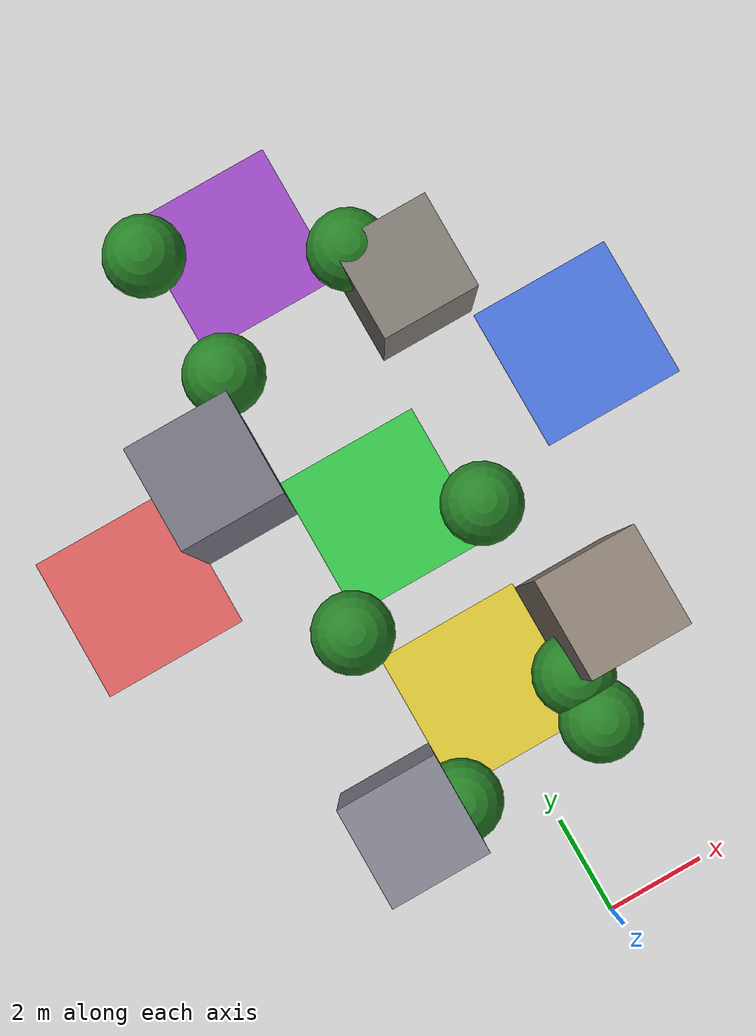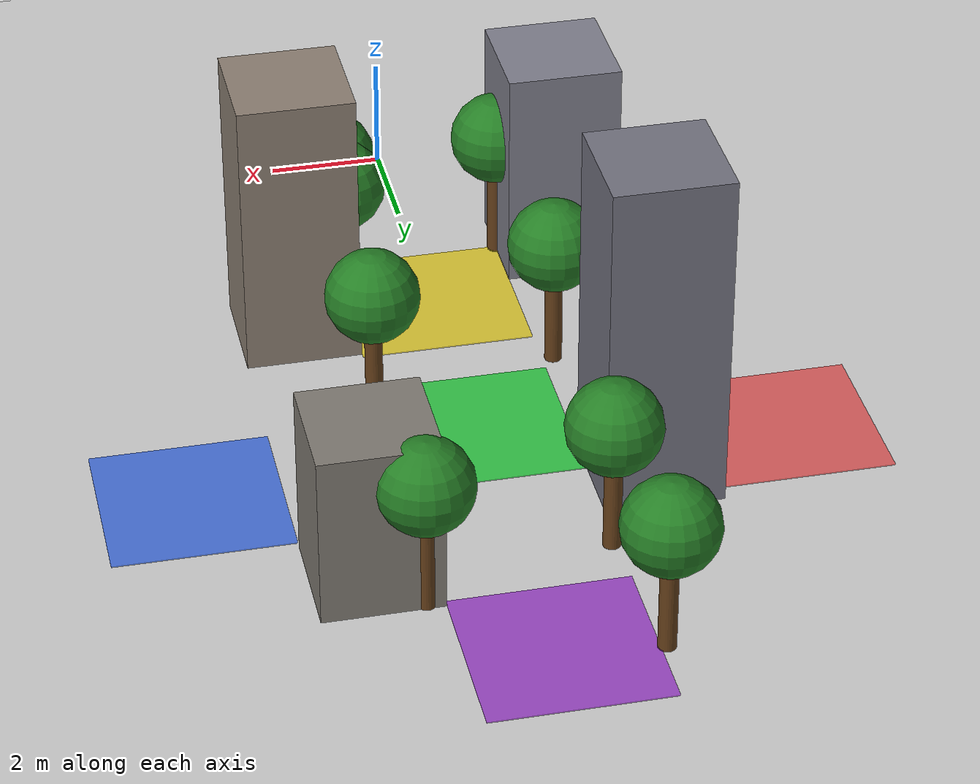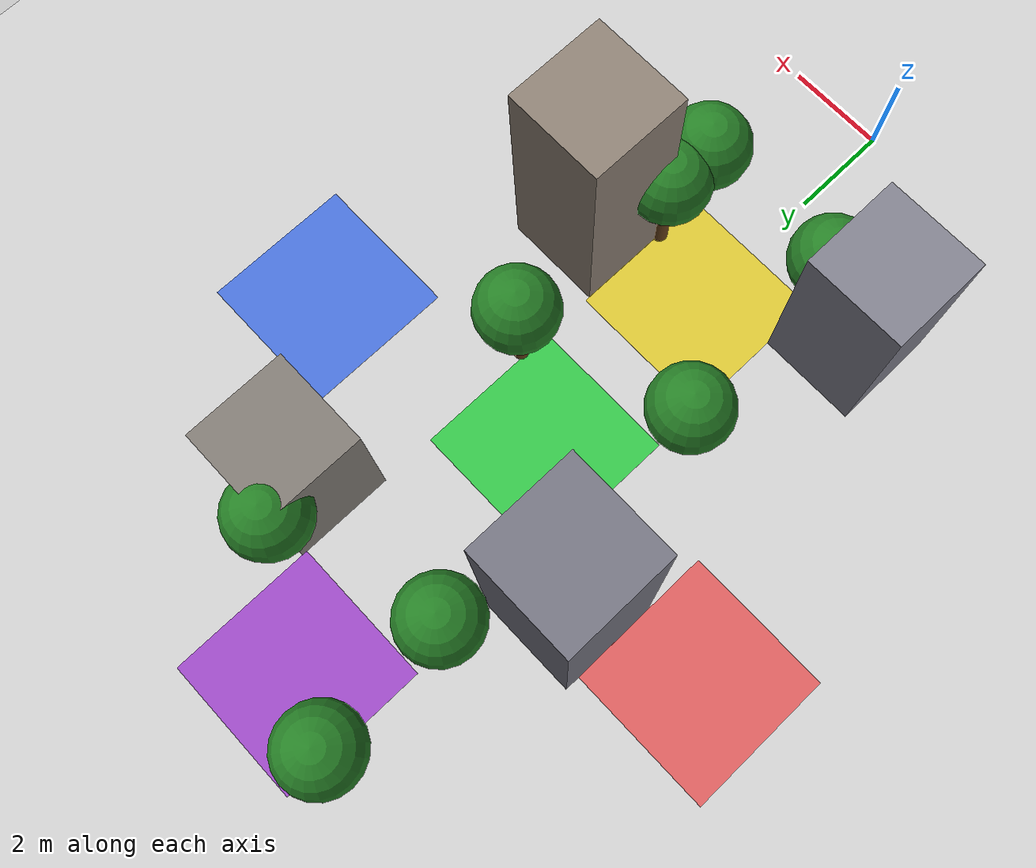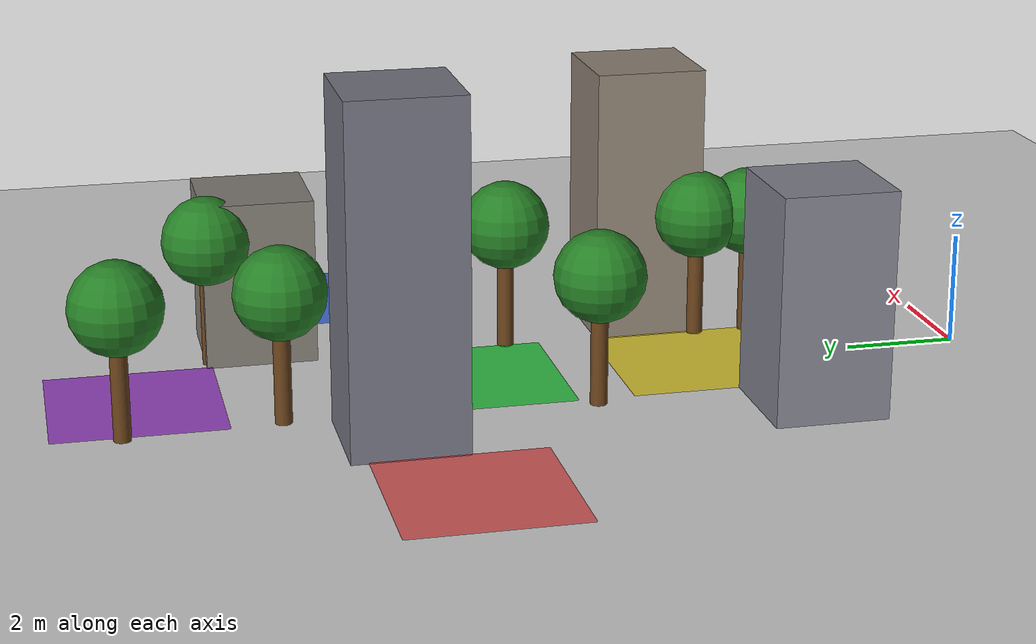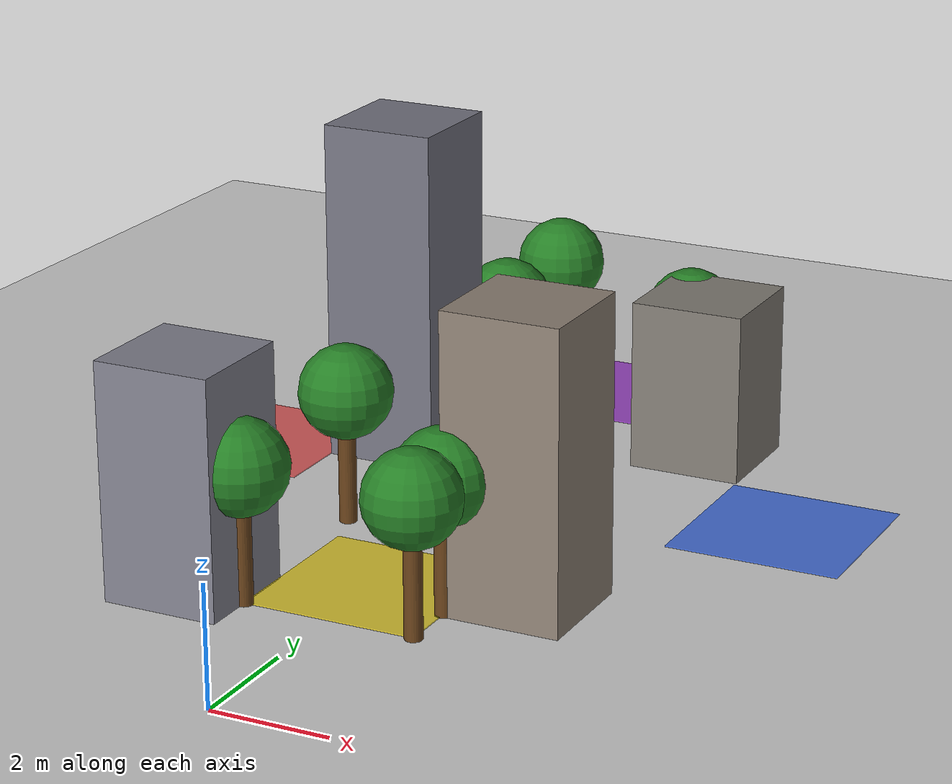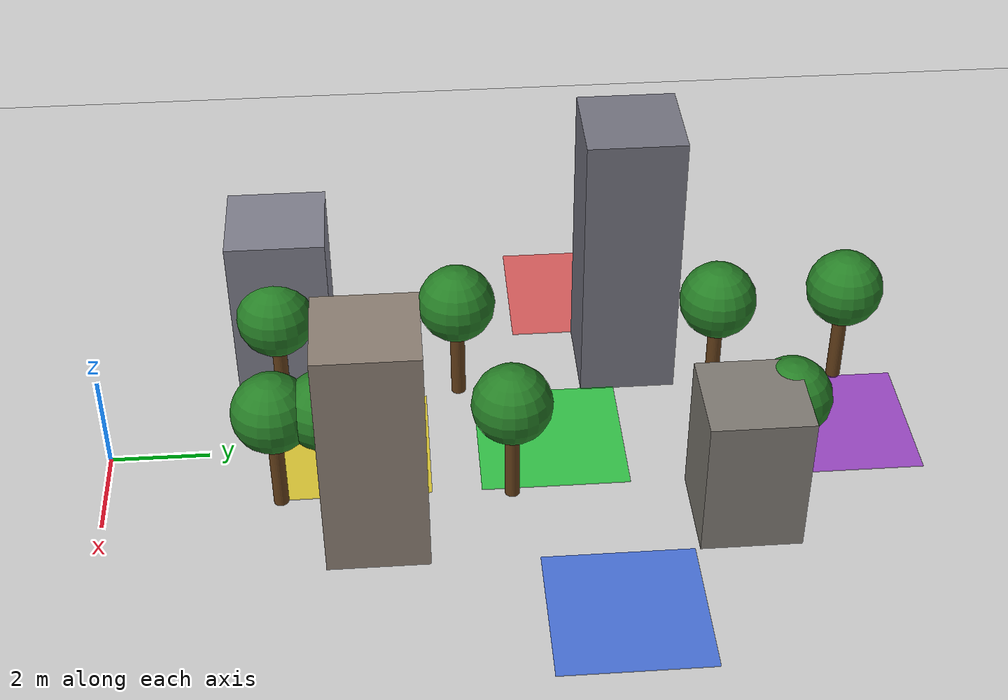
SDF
<?xml version="1.0" encoding="UTF-8"?>
<sdf version="1.9">
  <world name="default">
    <physics type="ode">
      <max_step_size>0.004</max_step_size>
      <real_time_factor>1.0</real_time_factor>
      <real_time_update_rate>250</real_time_update_rate>
    </physics>
    <gravity>0 0 -9.8</gravity>
    <magnetic_field>6e-06 2.3e-05 -4.2e-05</magnetic_field>
    <atmosphere type="adiabatic"/>
    <scene>
      <grid>false</grid>
      <ambient>0.4 0.4 0.4 1</ambient>
      <background>0.7 0.7 0.7 1</background>
      <shadows>true</shadows>
    </scene>
    <model name="ground_plane">
      <static>true</static>
      <link name="link">
        <collision name="collision">
          <geometry>
            <plane>
              <normal>0 0 1</normal>
              <size>1 1</size>
            </plane>
          </geometry>
          <surface>
            <friction>
              <ode/>
            </friction>
            <bounce/>
            <contact/>
          </surface>
        </collision>
        <visual name="visual">
          <geometry>
            <plane>
              <normal>0 0 1</normal>
              <size>500 500</size>
            </plane>
          </geometry>
          <material>
            <ambient>0.8 0.8 0.8 1</ambient>
            <diffuse>0.8 0.8 0.8 1</diffuse>
            <specular>0.8 0.8 0.8 1</specular>
          </material>
        </visual>
        <pose>0 0 0 0 -0 0</pose>
        <inertial>
          <pose>0 0 0 0 -0 0</pose>
          <mass>1</mass>
          <inertia>
            <ixx>1</ixx>
            <ixy>0</ixy>
            <ixz>0</ixz>
            <iyy>1</iyy>
            <iyz>0</iyz>
            <izz>1</izz>
          </inertia>
        </inertial>
        <enable_wind>false</enable_wind>
      </link>
      <pose>0 0 0 0 -0 0</pose>
      <self_collide>false</self_collide>
    </model>
    <light name="sunUTC" type="directional">
      <pose>0 0 500 0 -0 0</pose>
      <cast_shadows>true</cast_shadows>
      <intensity>1</intensity>
      <direction>0.001 0.625 -0.78</direction>
      <diffuse>0.904 0.904 0.904 1</diffuse>
      <specular>0.271 0.271 0.271 1</specular>
      <attenuation>
        <range>2000</range>
        <linear>0</linear>
        <constant>1</constant>
        <quadratic>0</quadratic>
      </attenuation>
      <spot>
        <inner_angle>0</inner_angle>
        <outer_angle>0</outer_angle>
        <falloff>0</falloff>
      </spot>
    </light>
    <spherical_coordinates>
      <surface_model>EARTH_WGS84</surface_model>
      <world_frame_orientation>ENU</world_frame_orientation>
      <latitude_deg>47.397971057728974</latitude_deg>
      <longitude_deg> 8.546163739800146</longitude_deg>
      <elevation>0</elevation>
    </spherical_coordinates>
  <!-- Korytarz przeszkód: 4 słupy tworzące "bramkę" do przelotu -->
     <!-- Budynki po lewej stronie korytarza (X ujemne) -->
    <model name="building_1">
      <static>true</static>
      <pose>-2.5 3.6 2 0 0 0</pose>
      <link name="link">
        <collision name="collision"><geometry><box><size>2 2 4</size></box></geometry></collision>
        <visual name="visual">
          <geometry><box><size>2 2 4</size></box></geometry>
          <material><ambient>0.5 0.5 0.55 1</ambient><diffuse>0.5 0.5 0.55 1</diffuse></material>
        </visual>
      </link>
    </model>

    <model name="building_2">
      <static>true</static>
      <pose>-2.5 10.8 3 0 0 0</pose>
      <link name="link">
        <collision name="collision"><geometry><box><size>2 2 6</size></box></geometry></collision>
        <visual name="visual">
          <geometry><box><size>2 2 6</size></box></geometry>
          <material><ambient>0.45 0.45 0.5 1</ambient><diffuse>0.45 0.45 0.5 1</diffuse></material>
        </visual>
      </link>
    </model>

    <!-- Budynki po prawej stronie korytarza (X dodatnie) -->
    <model name="building_3">
      <static>true</static>
      <pose>2.5 5.4 2.5 0 0 0</pose>
      <link name="link">
        <collision name="collision"><geometry><box><size>2 2 5</size></box></geometry></collision>
        <visual name="visual">
          <geometry><box><size>2 2 5</size></box></geometry>
          <material><ambient>0.55 0.5 0.45 1</ambient><diffuse>0.55 0.5 0.45 1</diffuse></material>
        </visual>
      </link>
    </model>

    <model name="building_4">
      <static>true</static>
      <pose>2.5 12.6 1.5 0 0 0</pose>
      <link name="link">
        <collision name="collision"><geometry><box><size>2 2 3</size></box></geometry></collision>
        <visual name="visual">
          <geometry><box><size>2 2 3</size></box></geometry>
          <material><ambient>0.5 0.48 0.45 1</ambient><diffuse>0.5 0.48 0.45 1</diffuse></material>
        </visual>
      </link>
    </model>

    <model name="tree_0">
      <static>true</static>
      <pose>-1.5 3.5 1.0 0 0 0</pose>
      <link name="link">
        <collision name="trunk_collision">
          <geometry><cylinder><radius>0.15</radius><length>2</length></cylinder></geometry>
        </collision>
        <visual name="trunk_visual">
          <geometry><cylinder><radius>0.15</radius><length>2</length></cylinder></geometry>
          <material><ambient>0.4 0.25 0.1 1</ambient><diffuse>0.4 0.25 0.1 1</diffuse></material>
        </visual>
        <visual name="crown_visual">
          <pose>0 0 1.3 0 0 0</pose>
          <geometry><sphere><radius>0.8</radius></sphere></geometry>
          <material><ambient>0.15 0.5 0.15 1</ambient><diffuse>0.15 0.5 0.15 1</diffuse></material>
        </visual>
      </link>
    </model>

    <model name="tree_1">
      <static>true</static>
      <pose>1.5 3.5 1.0 0 0 0</pose>
      <link name="link">
        <collision name="trunk_collision">
          <geometry><cylinder><radius>0.15</radius><length>2</length></cylinder></geometry>
        </collision>
        <visual name="trunk_visual">
          <geometry><cylinder><radius>0.15</radius><length>2</length></cylinder></geometry>
          <material><ambient>0.4 0.25 0.1 1</ambient><diffuse>0.4 0.25 0.1 1</diffuse></material>
        </visual>
        <visual name="crown_visual">
          <pose>0 0 1.3 0 0 0</pose>
          <geometry><sphere><radius>0.8</radius></sphere></geometry>
          <material><ambient>0.15 0.5 0.15 1</ambient><diffuse>0.15 0.5 0.15 1</diffuse></material>
        </visual>
      </link>
    </model>

    <model name="tree_2">
      <static>true</static>
      <pose>-1.7 7.2 1.0 0 0 0</pose>
      <link name="link">
        <collision name="trunk_collision">
          <geometry><cylinder><radius>0.15</radius><length>2</length></cylinder></geometry>
        </collision>
        <visual name="trunk_visual">
          <geometry><cylinder><radius>0.15</radius><length>2</length></cylinder></geometry>
          <material><ambient>0.4 0.25 0.1 1</ambient><diffuse>0.4 0.25 0.1 1</diffuse></material>
        </visual>
        <visual name="crown_visual">
          <pose>0 0 1.3 0 0 0</pose>
          <geometry><sphere><radius>0.8</radius></sphere></geometry>
          <material><ambient>0.15 0.5 0.15 1</ambient><diffuse>0.15 0.5 0.15 1</diffuse></material>
        </visual>
      </link>
    </model>

    <model name="tree_3">
      <static>true</static>
      <pose>1.6 8.1 1.0 0 0 0</pose>
      <link name="link">
        <collision name="trunk_collision">
          <geometry><cylinder><radius>0.15</radius><length>2</length></cylinder></geometry>
        </collision>
        <visual name="trunk_visual">
          <geometry><cylinder><radius>0.15</radius><length>2</length></cylinder></geometry>
          <material><ambient>0.4 0.25 0.1 1</ambient><diffuse>0.4 0.25 0.1 1</diffuse></material>
        </visual>
        <visual name="crown_visual">
          <pose>0 0 1.3 0 0 0</pose>
          <geometry><sphere><radius>0.8</radius></sphere></geometry>
          <material><ambient>0.15 0.5 0.15 1</ambient><diffuse>0.15 0.5 0.15 1</diffuse></material>
        </visual>
      </link>
    </model>

    <model name="tree_4">
      <static>true</static>
      <pose>-1.4 12.6 1.0 0 0 0</pose>
      <link name="link">
        <collision name="trunk_collision">
          <geometry><cylinder><radius>0.15</radius><length>2</length></cylinder></geometry>
        </collision>
        <visual name="trunk_visual">
          <geometry><cylinder><radius>0.15</radius><length>2</length></cylinder></geometry>
          <material><ambient>0.4 0.25 0.1 1</ambient><diffuse>0.4 0.25 0.1 1</diffuse></material>
        </visual>
        <visual name="crown_visual">
          <pose>0 0 1.3 0 0 0</pose>
          <geometry><sphere><radius>0.8</radius></sphere></geometry>
          <material><ambient>0.15 0.5 0.15 1</ambient><diffuse>0.15 0.5 0.15 1</diffuse></material>
        </visual>
      </link>
    </model>

    <model name="tree_5">
      <static>true</static>
      <pose>1.8 13.5 1.0 0 0 0</pose>
      <link name="link">
        <collision name="trunk_collision">
          <geometry><cylinder><radius>0.15</radius><length>2</length></cylinder></geometry>
        </collision>
        <visual name="trunk_visual">
          <geometry><cylinder><radius>0.15</radius><length>2</length></cylinder></geometry>
          <material><ambient>0.4 0.25 0.1 1</ambient><diffuse>0.4 0.25 0.1 1</diffuse></material>
        </visual>
        <visual name="crown_visual">
          <pose>0 0 1.3 0 0 0</pose>
          <geometry><sphere><radius>0.8</radius></sphere></geometry>
          <material><ambient>0.15 0.5 0.15 1</ambient><diffuse>0.15 0.5 0.15 1</diffuse></material>
        </visual>
      </link>
    </model>

    <model name="tree_6">
      <static>true</static>
      <pose>-1.6 15.3 1.0 0 0 0</pose>
      <link name="link">
        <collision name="trunk_collision">
          <geometry><cylinder><radius>0.15</radius><length>2</length></cylinder></geometry>
        </collision>
        <visual name="trunk_visual">
          <geometry><cylinder><radius>0.15</radius><length>2</length></cylinder></geometry>
          <material><ambient>0.4 0.25 0.1 1</ambient><diffuse>0.4 0.25 0.1 1</diffuse></material>
        </visual>
        <visual name="crown_visual">
          <pose>0 0 1.3 0 0 0</pose>
          <geometry><sphere><radius>0.8</radius></sphere></geometry>
          <material><ambient>0.15 0.5 0.15 1</ambient><diffuse>0.15 0.5 0.15 1</diffuse></material>
        </visual>
      </link>
    </model>

    <model name="tree_7">
      <static>true</static>
      <pose>1.5 4.5 1.0 0 0 0</pose>
      <link name="link">
        <collision name="trunk_collision">
          <geometry><cylinder><radius>0.15</radius><length>2</length></cylinder></geometry>
        </collision>
        <visual name="trunk_visual">
          <geometry><cylinder><radius>0.15</radius><length>2</length></cylinder></geometry>
          <material><ambient>0.4 0.25 0.1 1</ambient><diffuse>0.4 0.25 0.1 1</diffuse></material>
        </visual>
        <visual name="crown_visual">
          <pose>0 0 1.3 0 0 0</pose>
          <geometry><sphere><radius>0.8</radius></sphere></geometry>
          <material><ambient>0.15 0.5 0.15 1</ambient><diffuse>0.15 0.5 0.15 1</diffuse></material>
        </visual>
      </link>
    </model>

    <model name="landing_zone">
      <static>true</static>
      <pose>0 9 0.01 0 0 0</pose>
      <link name="link">
        <visual name="visual">
          <geometry><box><size>3 3 0.02</size></box></geometry>
          <material><ambient>0.1 0.8 0.2 0.8</ambient><diffuse>0.1 0.8 0.2 0.8</diffuse></material>
        </visual>
      </link>
    </model>

    <model name="landing_zone_1">
      <static>true</static>
      <pose>0 5 0.01 0 0 0</pose>
      <link name="link">
        <visual name="visual">
          <geometry><box><size>3 3 0.02</size></box></geometry>
          <material><ambient>0.9 0.8 0.1 0.8</ambient><diffuse>0.9 0.8 0.1 0.8</diffuse></material>
        </visual>
      </link>
    </model>

    <model name="landing_zone_2">
      <static>true</static>
      <pose>5 10 0.01 0 0 0</pose>
      <link name="link">
        <visual name="visual">
          <geometry><box><size>3 3 0.02</size></box></geometry>
          <material><ambient>0.2 0.4 0.9 0.8</ambient><diffuse>0.2 0.4 0.9 0.8</diffuse></material>
        </visual>
      </link>
    </model>

    <model name="landing_zone_3">
      <static>true</static>
      <pose>0 15 0.01 0 0 0</pose>
      <link name="link">
        <visual name="visual">
          <geometry><box><size>3 3 0.02</size></box></geometry>
          <material><ambient>0.6 0.2 0.8 0.8</ambient><diffuse>0.6 0.2 0.8 0.8</diffuse></material>
        </visual>
      </link>
    </model>

    <model name="landing_zone_4">
      <static>true</static>
      <pose>-5 10 0.01 0 0 0</pose>
      <link name="link">
        <visual name="visual">
          <geometry><box><size>3 3 0.02</size></box></geometry>
          <material><ambient>0.9 0.3 0.3 0.8</ambient><diffuse>0.9 0.3 0.3 0.8</diffuse></material>
        </visual>
      </link>
    </model>
  </world>
</sdf>
